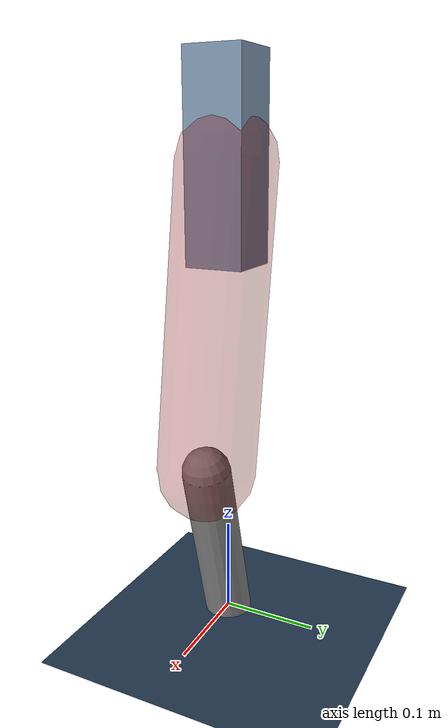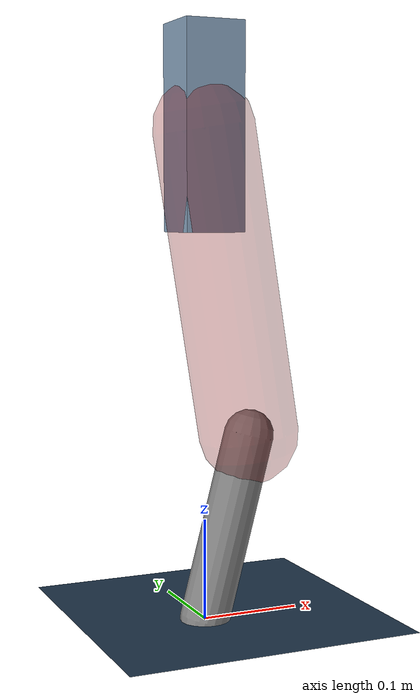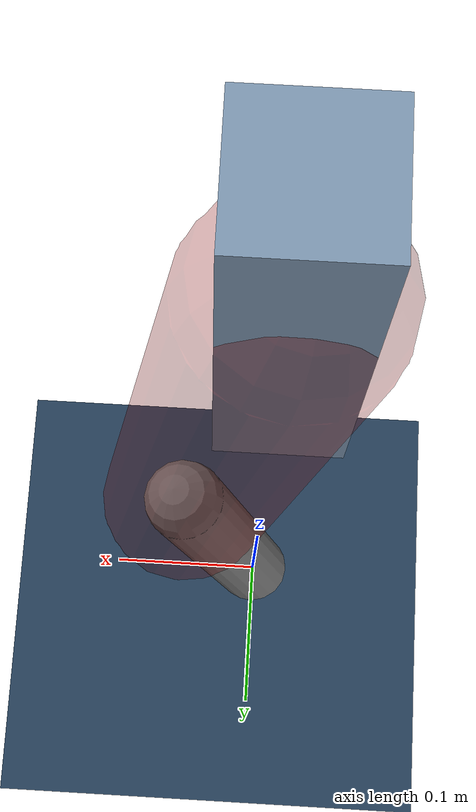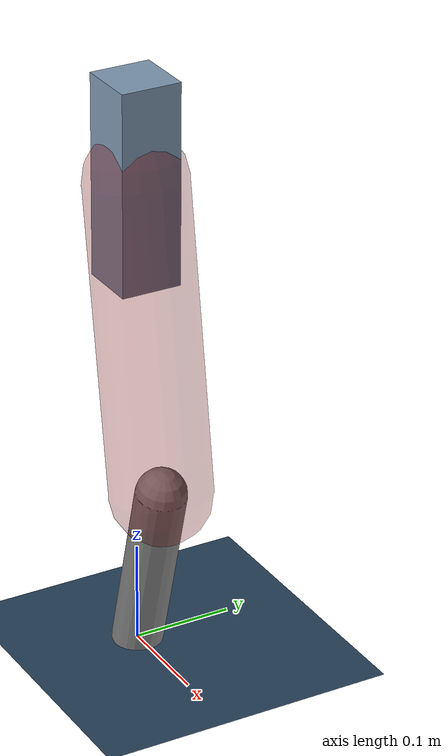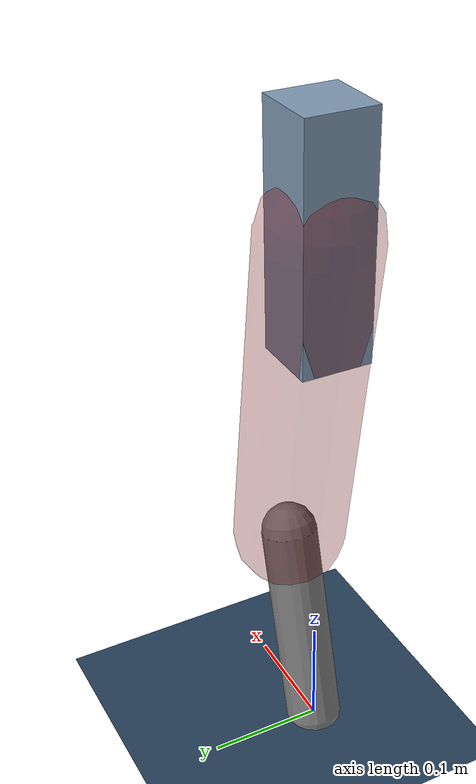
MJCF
<mujoco model="Hopper2D">
	<compiler inertiafromgeom="true" angle="radian" />
	<option timestep="0.001" integrator="implicit" cone="elliptic" solver="Newton" tolerance="1e-10" />

	<default>
		<geom contype="1" conaffinity="1" condim="3" friction="2 0.005 0.0001" solref="0.005 1" />
		<joint limited="true" damping="0.1" />
	</default>

	<asset>
		<texture name="skybox" type="skybox" builtin="gradient" rgb1=".4 .6 .8" rgb2="0 0 0" width="800" height="800" />
		<texture name="grid" type="2d" builtin="checker" rgb1=".1 .2 .3" rgb2=".2 .3 .4" width="300" height="300" mark="edge" markrgb=".2 .3 .4" />
		<material name="ground" texture="grid" texrepeat="1 1" texuniform="true" reflectance="0.1" />
		<material name="leg" rgba="0.5 0.6 0.7 1" />
	</asset>

	<worldbody>

		<geom name="floor" type="plane" size="5 5 0.25" material="ground" />

		<light directional="false" diffuse="0.8 0.8 0.8" specular="0.3 0.3 0.3" pos="0 0 2" dir="0 0 -1" />
		<light mode="targetbodycom" target="base" directional="false" diffuse="0.8 0.8 0.8" specular="0.3 0.3 0.3" pos="0 0 2" dir="0 0 -1" />

		<camera name="fixed" pos="0 -2 1" xyaxes="1 0 0 0 0 1" />
		<camera name="tracking" mode="trackcom" pos="0 -3 1" />

		<body name="root" pos="0 0 0.484484370224178">
			<joint name="slide_x" type="slide" axis="1 0 0" range="-100 100" />
			<joint name="slide_z" type="slide" axis="0 0 1" range="0 10" />

			<body name="base" pos="0 0 0">
				<geom name="torso" type="box" size="0.03 0.03 0.1" mass="2.299" material="leg" />

				<body name="link1" pos="0 0 0" euler="0 1.4128464148873918 0">
					<joint type="hinge" axis="0 -1 0" pos="0 0 0" name="hinge1" limited="true" range="-3.14 3.14" stiffness="0" damping="0.1" />
					<geom name="thigh" type="capsule" fromto="0 0 0 0.30533716606961897 0 0" size="0.05" rgba="0.5 0 0 0.3" mass="1.003210348387971" />

					<body name="link2" pos="0.30533716606961897 0 0" euler="0 0.4146777779603318 0">
						<joint type="hinge" axis="0 -1 0" pos="0 0 0" name="hinge2" limited="true" range="-3.14 3.14" stiffness="0" damping="0.1" />
						<geom name="shank" type="capsule" fromto="0 0 0 0.18914720415455902 0 0" size="0.025" mass="0.3917177633236472" />

					</body>
				</body>
			</body>
		</body>
	</worldbody>

	<actuator>
		<motor name="torque1" joint="hinge1" ctrlrange="-67.4179822188449 67.4179822188449" ctrllimited="true" gear="1" />
		<motor name="torque2" joint="hinge2" ctrlrange="-85.55630330887237 85.55630330887237" ctrllimited="true" gear="1" />
	</actuator>
</mujoco>
